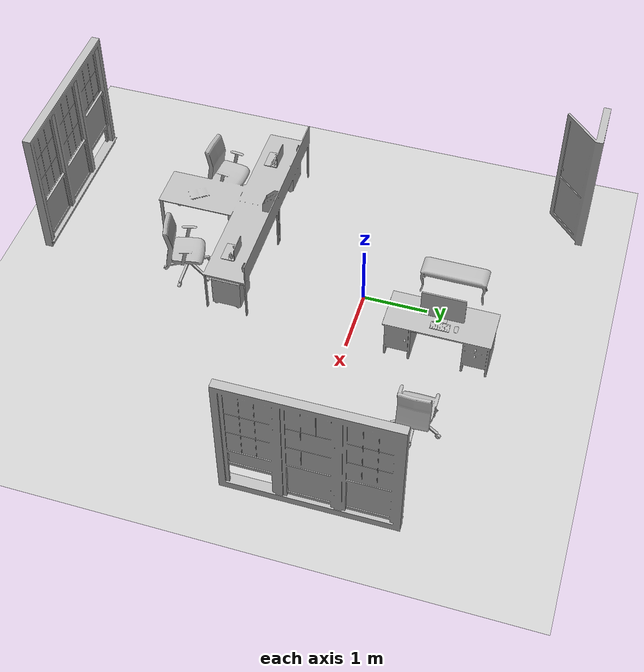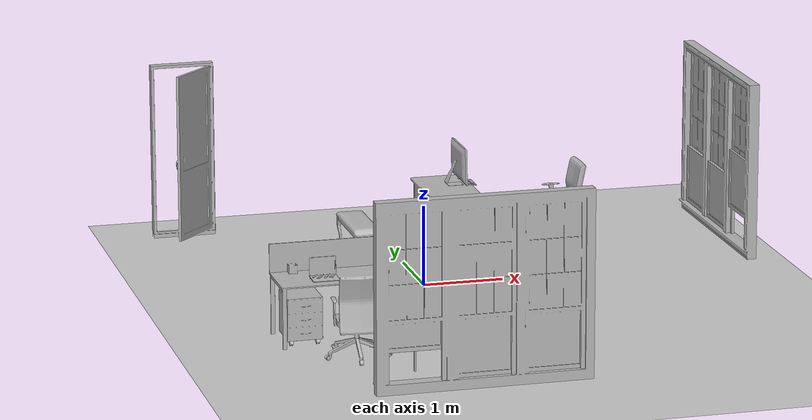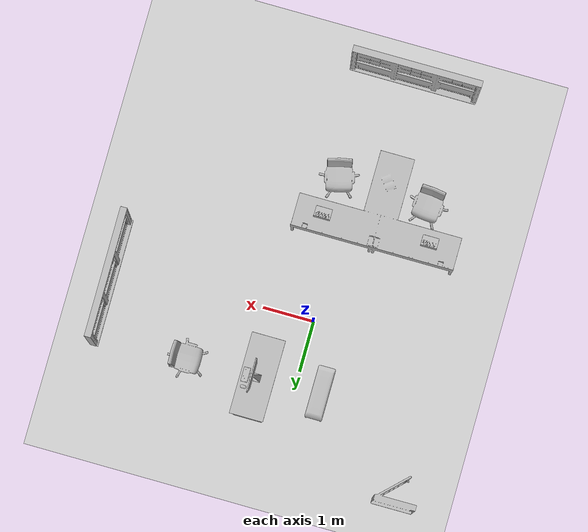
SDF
<sdf version="1.4">
 <world name="default">
  <light name="sun" type="directional">
   <pose>0 0 10 0 -0 0</pose>
   <diffuse>0.8 0.8 0.8 1</diffuse>
   <specular>0.2 0.2 0.2 1</specular>
   <attenuation>
    <range>1000</range>
    <constant>0.9</constant>
    <linear>0.01</linear>
    <quadratic>0.001</quadratic>
   </attenuation>
   <direction>-0.5 0.1 -0.9</direction>
  </light>
  <model name="ground_plane">
   <static>1</static>
   <link name="link">
    <collision name="collision">
     <geometry><plane><normal>0 0 1</normal><size>100 100</size></plane></geometry>
     <surface><friction><ode><mu>100</mu><mu2>50</mu2></ode></friction></surface>
    </collision>
    <visual name="visual">
     <cast_shadows>0</cast_shadows>
     <geometry><plane><normal>0 0 1</normal><size>100 100</size></plane></geometry>
     <material>
      <script><uri>file://media/materials/scripts/gazebo.material</uri><name>Gazebo/Grey</name></script>
     </material>
    </visual>
    <velocity_decay><linear>0</linear><angular>0</angular></velocity_decay>
   </link>
  </model>
  <physics type="ode">
   <max_step_size>0.001</max_step_size>
   <real_time_factor>1</real_time_factor>
   <real_time_update_rate>1000</real_time_update_rate>
   <gravity>0 0 -9.8</gravity>
  </physics>
  <scene><ambient>0.4 0.4 0.4 1</ambient><background>0.7 0.7 0.7 1</background><shadows>1</shadows></scene>
  <spherical_coordinates>
   <surface_model>EARTH_WGS84</surface_model>
   <latitude_deg>0</latitude_deg>
   <longitude_deg>0</longitude_deg>
   <elevation>0</elevation>
   <heading_deg>0</heading_deg>
  </spherical_coordinates>
  <model name="246_0">
   <pose>-2.38892 2.97922 0 0 -0 1.57487</pose>
   <static>1</static>
   <link name="link">
    <collision name="collision"><geometry><box><size>0.61 0.8 2</size></box></geometry></collision>
    <visual name="visual"><geometry><mesh><uri>model://246/246.dae</uri></mesh></geometry></visual>
    <velocity_decay><linear>0</linear><angular>0</angular></velocity_decay>
   </link>
  </model>
  <model name="694_0">
   <pose>-0.691214 -2.50511 0.03 0 0 -1.5708</pose>
   <static>1</static>
   <link name="link">
    <collision name="collision"><geometry><box><size>1.87 3.2 2</size></box></geometry></collision>
    <visual name="visual"><geometry><mesh><uri>model://694/694.dae</uri></mesh></geometry></visual>
    <velocity_decay><linear>0</linear><angular>0</angular></velocity_decay>
   </link>
  </model>
  <model name="107_0">
   <pose>0.724784 1.35313 0.03 0 -0 0</pose>
   <static>1</static>
   <link name="link">
    <collision name="collision"><geometry><box><size>0.66 1.6 2</size></box></geometry></collision>
    <visual name="visual"><geometry><mesh><uri>model://107/107.dae</uri></mesh></geometry></visual>
    <velocity_decay><linear>0</linear><angular>0</angular></velocity_decay>
   </link>
  </model>
  <model name="415_0">
   <pose>2.14047 1.35313 0.03 0 0 -3.14159</pose>
   <static>1</static>
   <link name="link">
    <collision name="collision"><geometry><box><size>0.749734 0.790304 2</size></box></geometry></collision>
    <visual name="visual"><geometry><mesh><uri>model://415/415.dae</uri></mesh></geometry></visual>
    <velocity_decay><linear>0</linear><angular>0</angular></velocity_decay>
   </link>
  </model>
  <model name="755_0">
   <pose>-0.604171 -4.92378 0.288932 0 -0 1.5708</pose>
   <static>1</static>
   <link name="link">
    <collision name="collision"><geometry><box><size>0.16 2.50006 2</size></box></geometry></collision>
    <visual name="visual"><geometry><mesh><uri>model://755/755.dae</uri></mesh></geometry></visual>
    <velocity_decay><linear>0</linear><angular>0</angular></velocity_decay>
   </link>
  </model>
  <model name="120_0">
   <pose>-1.72321 -2.00116 0.78 0 0 -1.5708</pose>
   <static>1</static>
   <link name="link">
    <collision name="collision"><geometry><box><size>0.225973 0.32 2</size></box></geometry></collision>
    <visual name="visual"><geometry><mesh><uri>model://120/120.dae</uri></mesh></geometry></visual>
    <velocity_decay><linear>0</linear><angular>0</angular></velocity_decay>
   </link>
  </model>
  <model name="120_1">
   <pose>0.376786 -1.9845 0.78 0 0 -1.5708</pose>
   <static>1</static>
   <link name="link">
    <collision name="collision"><geometry><box><size>0.225973 0.32 2</size></box></geometry></collision>
    <visual name="visual"><geometry><mesh><uri>model://120/120.dae</uri></mesh></geometry></visual>
    <velocity_decay><linear>0</linear><angular>0</angular></velocity_decay>
   </link>
  </model>
  <model name="189_0">
   <pose>0.832784 1.37712 0.871592 0 -0 0</pose>
   <static>1</static>
   <link name="link">
    <collision name="collision"><geometry><box><size>0.359507 0.6495 2</size></box></geometry></collision>
    <visual name="visual"><geometry><mesh><uri>model://189/189.dae</uri></mesh></geometry></visual>
    <velocity_decay><linear>0</linear><angular>0</angular></velocity_decay>
   </link>
  </model>
  <model name="478_0">
   <pose>-0.499981 1.30513 0.03 0 -0 0</pose>
   <static>1</static>
   <link name="link">
    <collision name="collision"><geometry><box><size>0.34 1.03 2</size></box></geometry></collision>
    <visual name="visual"><geometry><mesh><uri>model://478/478.dae</uri></mesh></geometry></visual>
    <velocity_decay><linear>0</linear><angular>0</angular></velocity_decay>
   </link>
  </model>
  <model name="755_1">
   <pose>3.91944 0.349037 0.283829 0 0 -3.13568</pose>
   <static>1</static>
   <link name="link">
    <collision name="collision"><geometry><box><size>0.16 2.50006 2</size></box></geometry></collision>
    <visual name="visual"><geometry><mesh><uri>model://755/755.dae</uri></mesh></geometry></visual>
    <velocity_decay><linear>0</linear><angular>0</angular></velocity_decay>
   </link>
  </model>
 </world>
</sdf>
